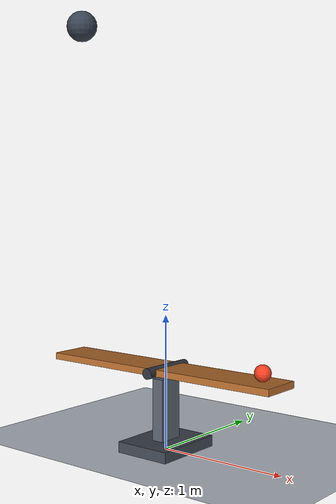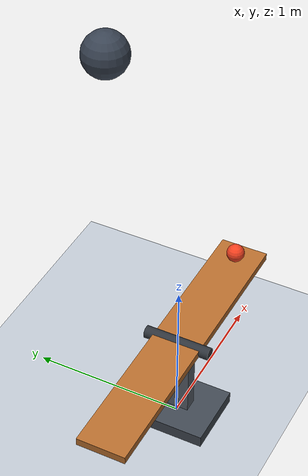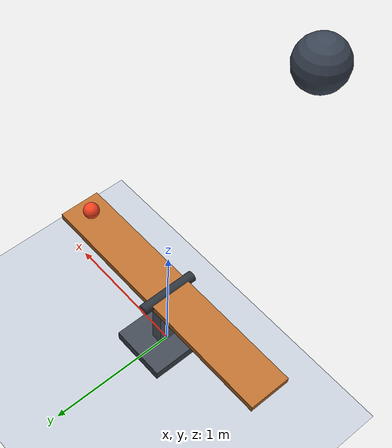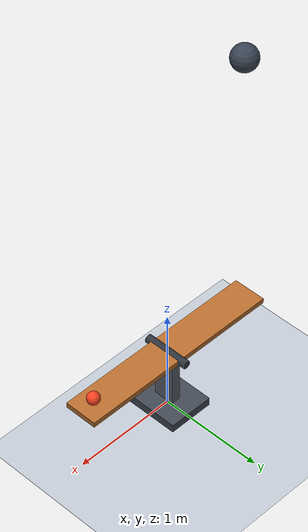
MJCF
<mujoco model="gravity_seesaw_launcher">
  <compiler angle="degree"/>
  <option timestep="0.002" gravity="0 0 -9.81" integrator="implicitfast" solver="Newton" iterations="100" tolerance="1e-10"/>

  <visual>
    <headlight ambient="0.35 0.35 0.35" diffuse="0.7 0.7 0.7"/>
  </visual>

  <worldbody>
    <light name="overhead_light" pos="0 -2 5" dir="0 0.3 -1" directional="true"/>
    <geom name="floor" type="plane" pos="0 0 0" size="6 6 0.1" friction="0.8 0.01 0.001" solref="0.006 1" rgba="0.75 0.78 0.82 1"/>

    <body name="fulcrum" pos="0 0 0">
      <geom name="fulcrum_base" type="box" pos="0 0 0.04" size="0.22 0.28 0.04" rgba="0.25 0.28 0.32 1"/>
      <geom name="fulcrum_post" type="box" pos="0 0 0.31" size="0.045 0.1 0.23" rgba="0.35 0.38 0.42 1"/>
      <geom name="fulcrum_axle" type="cylinder" pos="0 0 0.6" euler="90 0 0" size="0.04 0.22" contype="0" conaffinity="0" rgba="0.18 0.2 0.23 1"/>
    </body>

    <body name="seesaw" pos="0 0 0.6">
      <joint name="seesaw_hinge" type="hinge" axis="0 1 0" limited="true" range="-28 0" damping="0.002" frictionloss="0" solreflimit="0.004 1"/>
      <geom name="seesaw_plank" type="box" size="1 0.16 0.025" mass="0.12" friction="0.2 0.002 0.0002" solref="0.006 1" rgba="0.72 0.43 0.18 1"/>
    </body>

    <body name="weight" pos="-0.85 0 3.2">
      <freejoint name="weight_free"/>
      <geom name="weight_sphere" type="sphere" size="0.12" mass="1" friction="0.2 0.002 0.0002" solref="0.006 1" rgba="0.22 0.26 0.32 1"/>
    </body>

    <body name="ball" pos="0.85 0 0.685">
      <freejoint name="ball_free"/>
      <geom name="ball" type="sphere" size="0.06" mass="0.1" friction="0.2 0.002 0.0002" solref="0.006 1" rgba="0.95 0.25 0.12 1"/>
    </body>
  </worldbody>

  <keyframe>
    <key name="start" qpos="0 -0.85 0 3.2 1 0 0 0 0.85 0 0.685 1 0 0 0" qvel="0 0 0 0 0 0 0 0 0 0 0 0 0"/>
  </keyframe>
</mujoco>
